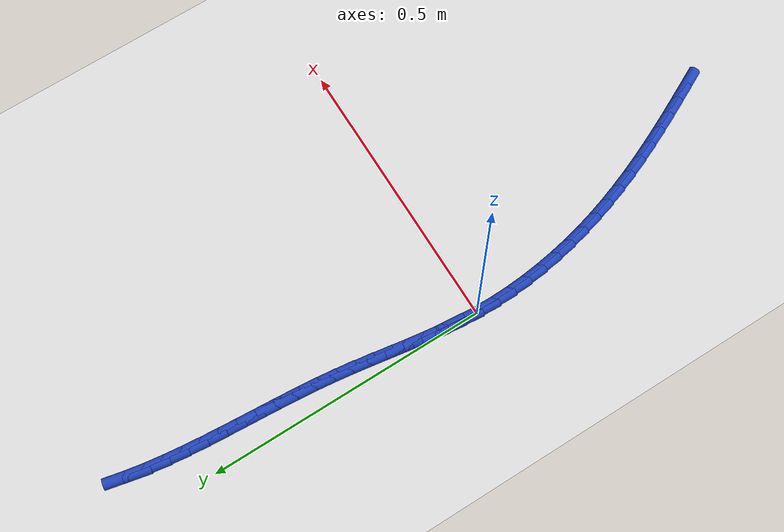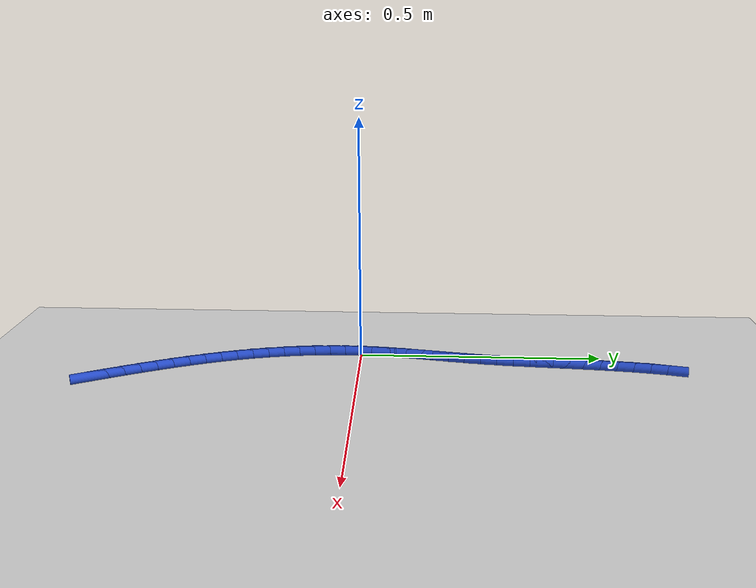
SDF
<sdf version="1.6">
 <world name="default">
  <model name="ground_plane">
   <static>1</static>
   <link name="link">
    <collision name="collision">
     <geometry><plane><normal>0 0 1</normal><size>100 100</size></plane></geometry>
     <surface><friction><ode><mu>100</mu><mu2>50</mu2></ode></friction></surface>
    </collision>
    <visual name="visual">
     <cast_shadows>0</cast_shadows>
     <geometry><plane><normal>0 0 1</normal><size>100 100</size></plane></geometry>
     <material>
      <script><uri>file://media/materials/scripts/gazebo.material</uri><name>Gazebo/WhiteGlow</name></script>
     </material>
    </visual>
   </link>
  </model>
  <model name="line">
   <link name="link_0">
    <pose>1.734723475976807e-18 7.632783294297951e-17 0.01 0 1.57 1.5088606404319338</pose>
    <collision name="collision">
     <geometry><cylinder><radius>0.01</radius><length>0.08</length></cylinder></geometry>
    </collision>
    <visual name="visual">
     <material>
      <script><name>Gazebo/Blue</name><uri>file://media/materials/scripts/gazebo.material</uri></script>
     </material>
     <geometry><cylinder><radius>0.01</radius><length>0.08</length></cylinder></geometry>
    </visual>
   </link>
   <link name="link_1">
    <pose>0.0019814948646000507 0.03195186235705555 0.01 0 1.57 1.4710465922923714</pose>
    <collision name="collision">
     <geometry><cylinder><radius>0.01</radius><length>0.08</length></cylinder></geometry>
    </collision>
    <visual name="visual">
     <material>
      <script><name>Gazebo/Blue</name><uri>file://media/materials/scripts/gazebo.material</uri></script>
     </material>
     <geometry><cylinder><radius>0.01</radius><length>0.08</length></cylinder></geometry>
    </visual>
   </link>
   <link name="link_2">
    <pose>0.005168089136434301 0.06379173029452886 0.01 0 1.57 1.4422814226991718</pose>
    <collision name="collision">
     <geometry><cylinder><radius>0.01</radius><length>0.08</length></cylinder></geometry>
    </collision>
    <visual name="visual">
     <material>
      <script><name>Gazebo/Blue</name><uri>file://media/materials/scripts/gazebo.material</uri></script>
     </material>
     <geometry><cylinder><radius>0.01</radius><length>0.08</length></cylinder></geometry>
    </visual>
   </link>
   <link name="link_3">
    <pose>0.009276603302800146 0.09558469937118494 0.01 0 1.57 1.4226572362010865</pose>
    <collision name="collision">
     <geometry><cylinder><radius>0.01</radius><length>0.08</length></cylinder></geometry>
    </collision>
    <visual name="visual">
     <material>
      <script><name>Gazebo/Blue</name><uri>file://media/materials/scripts/gazebo.material</uri></script>
     </material>
     <geometry><cylinder><radius>0.01</radius><length>0.08</length></cylinder></geometry>
    </visual>
   </link>
   <link name="link_4">
    <pose>0.014023857850994949 0.1273958651457886 0.01 0 1.57 1.4121501706744255</pose>
    <collision name="collision">
     <geometry><cylinder><radius>0.01</radius><length>0.08</length></cylinder></geometry>
    </collision>
    <visual name="visual">
     <material>
      <script><name>Gazebo/Blue</name><uri>file://media/materials/scripts/gazebo.material</uri></script>
     </material>
     <geometry><cylinder><radius>0.01</radius><length>0.08</length></cylinder></geometry>
    </visual>
   </link>
   <link name="link_5">
    <pose>0.0191266732683161 0.15929032317710473 0.01 0 1.57 1.4106704192429702</pose>
    <collision name="collision">
     <geometry><cylinder><radius>0.01</radius><length>0.08</length></cylinder></geometry>
    </collision>
    <visual name="visual">
     <material>
      <script><name>Gazebo/Blue</name><uri>file://media/materials/scripts/gazebo.material</uri></script>
     </material>
     <geometry><cylinder><radius>0.01</radius><length>0.08</length></cylinder></geometry>
    </visual>
   </link>
   <link name="link_6">
    <pose>0.024301870042060976 0.19133316902389833 0.01 0 1.57 1.4180898686334655</pose>
    <collision name="collision">
     <geometry><cylinder><radius>0.01</radius><length>0.08</length></cylinder></geometry>
    </collision>
    <visual name="visual">
     <material>
      <script><name>Gazebo/Blue</name><uri>file://media/materials/scripts/gazebo.material</uri></script>
     </material>
     <geometry><cylinder><radius>0.01</radius><length>0.08</length></cylinder></geometry>
    </visual>
   </link>
   <link name="link_7">
    <pose>0.029266268659526945 0.2235894982449341 0.01 0 1.57 1.434247552276316</pose>
    <collision name="collision">
     <geometry><cylinder><radius>0.01</radius><length>0.08</length></cylinder></geometry>
    </collision>
    <visual name="visual">
     <material>
      <script><name>Gazebo/Blue</name><uri>file://media/materials/scripts/gazebo.material</uri></script>
     </material>
     <geometry><cylinder><radius>0.01</radius><length>0.08</length></cylinder></geometry>
    </visual>
   </link>
   <link name="link_8">
    <pose>0.033736689608011385 0.256124406398977 0.01 0 1.57 1.4570660973408645</pose>
    <collision name="collision">
     <geometry><cylinder><radius>0.01</radius><length>0.08</length></cylinder></geometry>
    </collision>
    <visual name="visual">
     <material>
      <script><name>Gazebo/Blue</name><uri>file://media/materials/scripts/gazebo.material</uri></script>
     </material>
     <geometry><cylinder><radius>0.01</radius><length>0.08</length></cylinder></geometry>
    </visual>
   </link>
   <link name="link_9">
    <pose>0.03749006003651354 0.28898439214546656 0.01 0 1.57 1.476875158580273</pose>
    <collision name="collision">
     <geometry><cylinder><radius>0.01</radius><length>0.08</length></cylinder></geometry>
    </collision>
    <visual name="visual">
     <material>
      <script><name>Gazebo/Blue</name><uri>file://media/materials/scripts/gazebo.material</uri></script>
     </material>
     <geometry><cylinder><radius>0.01</radius><length>0.08</length></cylinder></geometry>
    </visual>
   </link>
   <link name="link_10">
    <pose>0.040611436690684455 0.3221206193685303 0.01 0 1.57 1.4907798391306923</pose>
    <collision name="collision">
     <geometry><cylinder><radius>0.01</radius><length>0.08</length></cylinder></geometry>
    </collision>
    <visual name="visual">
     <material>
      <script><name>Gazebo/Blue</name><uri>file://media/materials/scripts/gazebo.material</uri></script>
     </material>
     <geometry><cylinder><radius>0.01</radius><length>0.08</length></cylinder></geometry>
    </visual>
   </link>
   <link name="link_11">
    <pose>0.043284346556187785 0.35545378542681894 0.01 0 1.57 1.4989335394535366</pose>
    <collision name="collision">
     <geometry><cylinder><radius>0.01</radius><length>0.08</length></cylinder></geometry>
    </collision>
    <visual name="visual">
     <material>
      <script><name>Gazebo/Blue</name><uri>file://media/materials/scripts/gazebo.material</uri></script>
     </material>
     <geometry><cylinder><radius>0.01</radius><length>0.08</length></cylinder></geometry>
    </visual>
   </link>
   <link name="link_12">
    <pose>0.045692360108552314 0.3889045742232927 0.01 0 1.57 1.501431809270613</pose>
    <collision name="collision">
     <geometry><cylinder><radius>0.01</radius><length>0.08</length></cylinder></geometry>
    </collision>
    <visual name="visual">
     <material>
      <script><name>Gazebo/Blue</name><uri>file://media/materials/scripts/gazebo.material</uri></script>
     </material>
     <geometry><cylinder><radius>0.01</radius><length>0.08</length></cylinder></geometry>
    </visual>
   </link>
   <link name="link_13">
    <pose>0.04801904782330675 0.42239366966091196 0.01 0 1.57 1.4983055941783265</pose>
    <collision name="collision">
     <geometry><cylinder><radius>0.01</radius><length>0.08</length></cylinder></geometry>
    </collision>
    <visual name="visual">
     <material>
      <script><name>Gazebo/Blue</name><uri>file://media/materials/scripts/gazebo.material</uri></script>
     </material>
     <geometry><cylinder><radius>0.01</radius><length>0.08</length></cylinder></geometry>
    </visual>
   </link>
   <link name="link_14">
    <pose>0.05044798017597986 0.4558417556426367 0.01 0 1.57 1.4895197265518316</pose>
    <collision name="collision">
     <geometry><cylinder><radius>0.01</radius><length>0.08</length></cylinder></geometry>
    </collision>
    <visual name="visual">
     <material>
      <script><name>Gazebo/Blue</name><uri>file://media/materials/scripts/gazebo.material</uri></script>
     </material>
     <geometry><cylinder><radius>0.01</radius><length>0.08</length></cylinder></geometry>
    </visual>
   </link>
   <link name="link_15">
    <pose>0.05316272764210035 0.4891695160714271 0.01 0 1.57 1.4749749547206474</pose>
    <collision name="collision">
     <geometry><cylinder><radius>0.01</radius><length>0.08</length></cylinder></geometry>
    </collision>
    <visual name="visual">
     <material>
      <script><name>Gazebo/Blue</name><uri>file://media/materials/scripts/gazebo.material</uri></script>
     </material>
     <geometry><cylinder><radius>0.01</radius><length>0.08</length></cylinder></geometry>
    </visual>
   </link>
   <link name="link_16">
    <pose>0.05634686069719698 0.5222976348502436 0.01 0 1.57 1.4545139357520702</pose>
    <collision name="collision">
     <geometry><cylinder><radius>0.01</radius><length>0.08</length></cylinder></geometry>
    </collision>
    <visual name="visual">
     <material>
      <script><name>Gazebo/Blue</name><uri>file://media/materials/scripts/gazebo.material</uri></script>
     </material>
     <geometry><cylinder><radius>0.01</radius><length>0.08</length></cylinder></geometry>
    </visual>
   </link>
   <link name="link_17">
    <pose>0.06018394981679849 0.5551467958820463 0.01 0 1.57 1.4279323921423728</pose>
    <collision name="collision">
     <geometry><cylinder><radius>0.01</radius><length>0.08</length></cylinder></geometry>
    </collision>
    <visual name="visual">
     <material>
      <script><name>Gazebo/Blue</name><uri>file://media/materials/scripts/gazebo.material</uri></script>
     </material>
     <geometry><cylinder><radius>0.01</radius><length>0.08</length></cylinder></geometry>
    </visual>
   </link>
   <link name="link_18">
    <pose>0.0648575654764336 0.5876376830697954 0.01 0 1.57 1.39499736995248</pose>
    <collision name="collision">
     <geometry><cylinder><radius>0.01</radius><length>0.08</length></cylinder></geometry>
    </collision>
    <visual name="visual">
     <material>
      <script><name>Gazebo/Blue</name><uri>file://media/materials/scripts/gazebo.material</uri></script>
     </material>
     <geometry><cylinder><radius>0.01</radius><length>0.08</length></cylinder></geometry>
    </visual>
   </link>
   <link name="link_19">
    <pose>0.07055127815163106 0.6196909803164511 0.01 0 1.57 1.3554751047346427</pose>
    <collision name="collision">
     <geometry><cylinder><radius>0.01</radius><length>0.08</length></cylinder></geometry>
    </collision>
    <visual name="visual">
     <material>
      <script><name>Gazebo/Blue</name><uri>file://media/materials/scripts/gazebo.material</uri></script>
     </material>
     <geometry><cylinder><radius>0.01</radius><length>0.08</length></cylinder></geometry>
    </visual>
   </link>
   <link name="link_223">
    <pose>0.14588987069994508 -0.5235868061848866 0.01 0 1.57 -1.103778670714968</pose>
    <collision name="collision">
     <geometry><cylinder><radius>0.01</radius><length>0.08</length></cylinder></geometry>
    </collision>
    <visual name="visual">
     <material>
      <script><name>Gazebo/Blue</name><uri>file://media/materials/scripts/gazebo.material</uri></script>
     </material>
     <geometry><cylinder><radius>0.01</radius><length>0.08</length></cylinder></geometry>
    </visual>
   </link>
   <link name="link_224">
    <pose>0.1316362486995512 -0.49531813199025254 0.01 0 1.57 -1.1135379033898958</pose>
    <collision name="collision">
     <geometry><cylinder><radius>0.01</radius><length>0.08</length></cylinder></geometry>
    </collision>
    <visual name="visual">
     <material>
      <script><name>Gazebo/Blue</name><uri>file://media/materials/scripts/gazebo.material</uri></script>
     </material>
     <geometry><cylinder><radius>0.01</radius><length>0.08</length></cylinder></geometry>
    </visual>
   </link>
   <link name="link_225">
    <pose>0.11755111542295563 -0.46669207228768345 0.01 0 1.57 -1.1260737854726195</pose>
    <collision name="collision">
     <geometry><cylinder><radius>0.01</radius><length>0.08</length></cylinder></geometry>
    </collision>
    <visual name="visual">
     <material>
      <script><name>Gazebo/Blue</name><uri>file://media/materials/scripts/gazebo.material</uri></script>
     </material>
     <geometry><cylinder><radius>0.01</radius><length>0.08</length></cylinder></geometry>
    </visual>
   </link>
   <link name="link_226">
    <pose>0.10373755669617708 -0.43770625289910065 0.01 0 1.57 -1.1418445077832782</pose>
    <collision name="collision">
     <geometry><cylinder><radius>0.01</radius><length>0.08</length></cylinder></geometry>
    </collision>
    <visual name="visual">
     <material>
      <script><name>Gazebo/Blue</name><uri>file://media/materials/scripts/gazebo.material</uri></script>
     </material>
     <geometry><cylinder><radius>0.01</radius><length>0.08</length></cylinder></geometry>
    </visual>
   </link>
   <link name="link_227">
    <pose>0.09031629740882029 -0.40836073696671393 0.01 0 1.57 -1.1608685296974093</pose>
    <collision name="collision">
     <geometry><cylinder><radius>0.01</radius><length>0.08</length></cylinder></geometry>
    </collision>
    <visual name="visual">
     <material>
      <script><name>Gazebo/Blue</name><uri>file://media/materials/scripts/gazebo.material</uri></script>
     </material>
     <geometry><cylinder><radius>0.01</radius><length>0.08</length></cylinder></geometry>
    </visual>
   </link>
   <link name="link_228">
    <pose>0.0774080624504899 -0.378655587632733 0.01 0 1.57 -1.1831820963294657</pose>
    <collision name="collision">
     <geometry><cylinder><radius>0.01</radius><length>0.08</length></cylinder></geometry>
    </collision>
    <visual name="visual">
     <material>
      <script><name>Gazebo/Blue</name><uri>file://media/materials/scripts/gazebo.material</uri></script>
     </material>
     <geometry><cylinder><radius>0.01</radius><length>0.08</length></cylinder></geometry>
    </visual>
   </link>
   <link name="link_229">
    <pose>0.06513357671079048 -0.3485908680393674 0.01 0 1.57 -1.2088330045445728</pose>
    <collision name="collision">
     <geometry><cylinder><radius>0.01</radius><length>0.08</length></cylinder></geometry>
    </collision>
    <visual name="visual">
     <material>
      <script><name>Gazebo/Blue</name><uri>file://media/materials/scripts/gazebo.material</uri></script>
     </material>
     <geometry><cylinder><radius>0.01</radius><length>0.08</length></cylinder></geometry>
    </visual>
   </link>
   <link name="link_230">
    <pose>0.05361356507932645 -0.3181666413288259 0.01 0 1.57 -1.2378732871335216</pose>
    <collision name="collision">
     <geometry><cylinder><radius>0.01</radius><length>0.08</length></cylinder></geometry>
    </collision>
    <visual name="visual">
     <material>
      <script><name>Gazebo/Blue</name><uri>file://media/materials/scripts/gazebo.material</uri></script>
     </material>
     <geometry><cylinder><radius>0.01</radius><length>0.08</length></cylinder></geometry>
    </visual>
   </link>
   <link name="link_231">
    <pose>0.042968752445703036 -0.2873829706433198 0.01 0 1.57 -1.2703502755226699</pose>
    <collision name="collision">
     <geometry><cylinder><radius>0.01</radius><length>0.08</length></cylinder></geometry>
    </collision>
    <visual name="visual">
     <material>
      <script><name>Gazebo/Blue</name><uri>file://media/materials/scripts/gazebo.material</uri></script>
     </material>
     <geometry><cylinder><radius>0.01</radius><length>0.08</length></cylinder></geometry>
    </visual>
   </link>
   <link name="link_232">
    <pose>0.033319856849778305 -0.2562399253030922 0.01 0 1.57 -1.305726000557417</pose>
    <collision name="collision">
     <geometry><cylinder><radius>0.01</radius><length>0.08</length></cylinder></geometry>
    </collision>
    <visual name="visual">
     <material>
      <script><name>Gazebo/Blue</name><uri>file://media/materials/scripts/gazebo.material</uri></script>
     </material>
     <geometry><cylinder><radius>0.01</radius><length>0.08</length></cylinder></geometry>
    </visual>
   </link>
   <link name="link_233">
    <pose>0.024772087059113247 -0.22475156300315247 0.01 0 1.57 -1.3422927069049717</pose>
    <collision name="collision">
     <geometry><cylinder><radius>0.01</radius><length>0.08</length></cylinder></geometry>
    </collision>
    <visual name="visual">
     <material>
      <script><name>Gazebo/Blue</name><uri>file://media/materials/scripts/gazebo.material</uri></script>
     </material>
     <geometry><cylinder><radius>0.01</radius><length>0.08</length></cylinder></geometry>
    </visual>
   </link>
   <link name="link_234">
    <pose>0.017382120774250567 -0.19297571336669525 0.01 0 1.57 -1.3798531662580489</pose>
    <collision name="collision">
     <geometry><cylinder><radius>0.01</radius><length>0.08</length></cylinder></geometry>
    </collision>
    <visual name="visual">
     <material>
      <script><name>Gazebo/Blue</name><uri>file://media/materials/scripts/gazebo.material</uri></script>
     </material>
     <geometry><cylinder><radius>0.01</radius><length>0.08</length></cylinder></geometry>
    </visual>
   </link>
   <link name="link_235">
    <pose>0.011197168768638043 -0.16097874458155836 0.01 0 1.57 -1.4185630184179385</pose>
    <collision name="collision">
     <geometry><cylinder><radius>0.01</radius><length>0.08</length></cylinder></geometry>
    </collision>
    <visual name="visual">
     <material>
      <script><name>Gazebo/Blue</name><uri>file://media/materials/scripts/gazebo.material</uri></script>
     </material>
     <geometry><cylinder><radius>0.01</radius><length>0.08</length></cylinder></geometry>
    </visual>
   </link>
   <link name="link_236">
    <pose>0.0062644418157234505 -0.12882702483557945 0.01 0 1.57 -1.4585750270052762</pose>
    <collision name="collision">
     <geometry><cylinder><radius>0.01</radius><length>0.08</length></cylinder></geometry>
    </collision>
    <visual name="visual">
     <material>
      <script><name>Gazebo/Blue</name><uri>file://media/materials/scripts/gazebo.material</uri></script>
     </material>
     <geometry><cylinder><radius>0.01</radius><length>0.08</length></cylinder></geometry>
    </visual>
   </link>
   <link name="link_237">
    <pose>0.002631150688954571 -0.09658692231659652 0.01 0 1.57 -1.5000375793805993</pose>
    <collision name="collision">
     <geometry><cylinder><radius>0.01</radius><length>0.08</length></cylinder></geometry>
    </collision>
    <visual name="visual">
     <material>
      <script><name>Gazebo/Blue</name><uri>file://media/materials/scripts/gazebo.material</uri></script>
     </material>
     <geometry><cylinder><radius>0.01</radius><length>0.08</length></cylinder></geometry>
    </visual>
   </link>
   <link name="link_238">
    <pose>0.00034450616177913963 -0.06432480521244636 0.01 0 1.57 -1.5430923946037938</pose>
    <collision name="collision">
     <geometry><cylinder><radius>0.01</radius><length>0.08</length></cylinder></geometry>
    </collision>
    <visual name="visual">
     <material>
      <script><name>Gazebo/Blue</name><uri>file://media/materials/scripts/gazebo.material</uri></script>
     </material>
     <geometry><cylinder><radius>0.01</radius><length>0.08</length></cylinder></geometry>
    </visual>
   </link>
   <link name="link_239">
    <pose>-0.0005482809923549516 -0.032107041710968495 0.01 0 1.57 1.553721327750826</pose>
    <collision name="collision">
     <geometry><cylinder><radius>0.01</radius><length>0.08</length></cylinder></geometry>
    </collision>
    <visual name="visual">
     <material>
      <script><name>Gazebo/Blue</name><uri>file://media/materials/scripts/gazebo.material</uri></script>
     </material>
     <geometry><cylinder><radius>0.01</radius><length>0.08</length></cylinder></geometry>
    </visual>
   </link>
   <link name="link_240">
    <pose>0.0 1.1102230246251565e-16 0.01 0 1.57 1.5071004913616692</pose>
    <collision name="collision">
     <geometry><cylinder><radius>0.01</radius><length>0.08</length></cylinder></geometry>
    </collision>
    <visual name="visual">
     <material>
      <script><name>Gazebo/Blue</name><uri>file://media/materials/scripts/gazebo.material</uri></script>
     </material>
     <geometry><cylinder><radius>0.01</radius><length>0.08</length></cylinder></geometry>
    </visual>
   </link>
   <link name="link_241">
    <pose>0.0020365599122917754 0.03192995173262171 0.01 0 1.57 1.458539272880258</pose>
    <collision name="collision">
     <geometry><cylinder><radius>0.01</radius><length>0.08</length></cylinder></geometry>
    </collision>
    <visual name="visual">
     <material>
      <script><name>Gazebo/Blue</name><uri>file://media/materials/scripts/gazebo.material</uri></script>
     </material>
     <geometry><cylinder><radius>0.01</radius><length>0.08</length></cylinder></geometry>
    </visual>
   </link>
   <link name="link_242">
    <pose>0.005608609517968141 0.06361644529905848 0.01 0 1.57 1.4828608008522324</pose>
    <collision name="collision">
     <geometry><cylinder><radius>0.01</radius><length>0.08</length></cylinder></geometry>
    </collision>
    <visual name="visual">
     <material>
      <script><name>Gazebo/Blue</name><uri>file://media/materials/scripts/gazebo.material</uri></script>
     </material>
     <geometry><cylinder><radius>0.01</radius><length>0.08</length></cylinder></geometry>
    </visual>
   </link>
  </model>
 </world>
</sdf>
